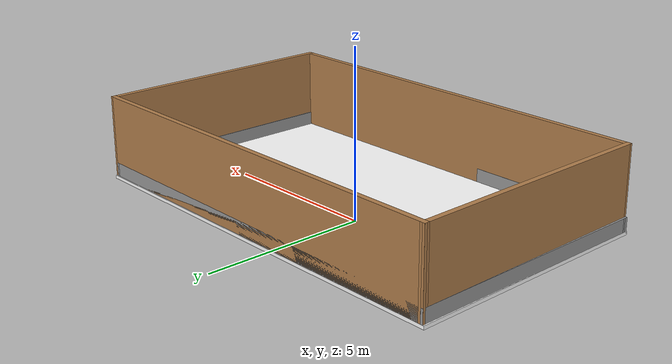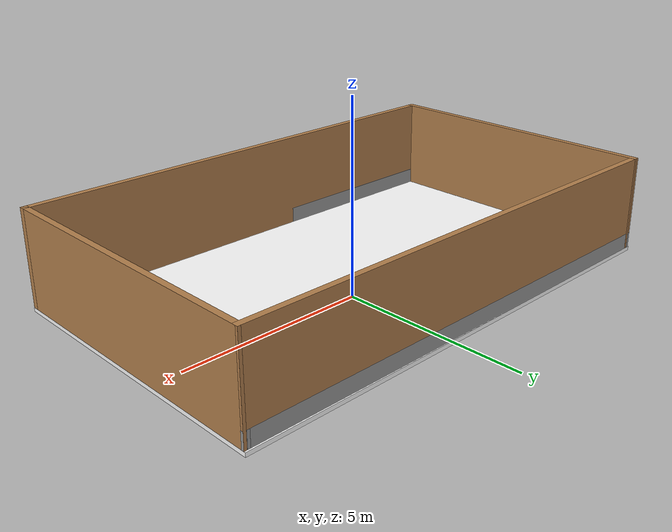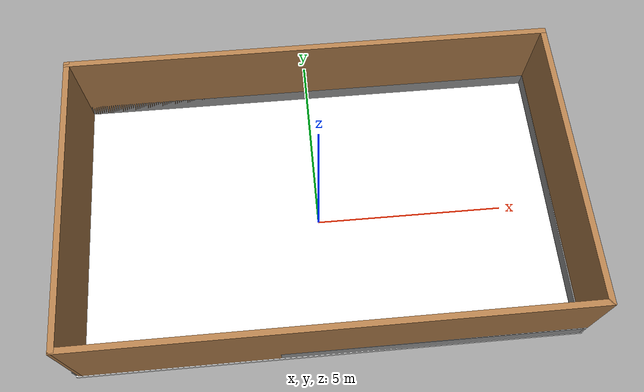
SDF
<?xml version='1.0'?>
<sdf version='1.6'>
  <model name='sala_seguidor'>
    <link name='Floor_0'>
      <pose frame=''>0 1e-06 0.5 0 -0 0</pose>
      <self_collide>0</self_collide>
      <enable_wind>0</enable_wind>
      <kinematic>0</kinematic>
       <collision name='Floor_0_Collision'>
        <laser_retro>0</laser_retro>
        <max_contacts>10</max_contacts>
        <pose frame=''>0 0 0.05 0 -0 0</pose>
        <geometry>
          <box>
            <size>12.5597 7.55672 0.1</size>
          </box>
        </geometry>
        <surface>
          <friction>
            <ode>
              <mu>0.8</mu>
              <mu2>0.8</mu2>
              <fdir1>0 0 0</fdir1>
              <slip1>0</slip1>
              <slip2>0</slip2>
            </ode>
            <torsional>
              <coefficient>1</coefficient>
              <patch_radius>0</patch_radius>
              <surface_radius>0</surface_radius>
              <use_patch_radius>1</use_patch_radius>
              <ode>
                <slip>0</slip>
              </ode>
            </torsional>
          </friction>
          <bounce>
            <restitution_coefficient>0</restitution_coefficient>
            <threshold>1e+06</threshold>
          </bounce>
          <contact>
            <collide_without_contact>0</collide_without_contact>
            <collide_without_contact_bitmask>1</collide_without_contact_bitmask>
            <collide_bitmask>1</collide_bitmask>
            <ode>
              <soft_cfm>0</soft_cfm>
              <soft_erp>0.2</soft_erp>
              <kp>1e+13</kp>
              <kd>1</kd>
              <max_vel>0.01</max_vel>
              <min_depth>0</min_depth>
            </ode>
            <bullet>
              <split_impulse>1</split_impulse>
              <split_impulse_penetration_threshold>-0.01</split_impulse_penetration_threshold>
              <soft_cfm>0</soft_cfm>
              <soft_erp>0.2</soft_erp>
              <kp>1e+13</kp>
              <kd>1</kd>
            </bullet>
          </contact>
        </surface>
      </collision>
      <visual name='Floor_0_Visual'>
        <pose frame=''>0 0 0.05 0 -0 0</pose>
        <geometry>
          <box>
            <size>12.5597 7.55672 0.1</size>
          </box>
        </geometry>
        <material>
          <ambient>1 1 1 1</ambient>
          <script>
            <uri>models://sala_seguidor/materials/scripts</uri>
            <uri>models://sala_seguidor/materials/texture</uri>
            <name>ReapetTexture</name>
          </script>
        </material>
        <meta>
          <layer>1</layer>
        </meta>
        <transparency>0</transparency>
        <cast_shadows>1</cast_shadows>
      </visual>

    </link>
    <link name='Wall_13'>
      <pose frame=''>0.018005 3.6855 0.5 0 0 -0.002829</pose>
      <self_collide>0</self_collide>
      <enable_wind>0</enable_wind>
      <kinematic>0</kinematic>
      <visual name='Wall_13_Visual'>
        <pose frame=''>0 0 0.25 0 -0 0</pose>
        <geometry>
          <box>
            <size>12.523 0.15 0.5</size>
          </box>
        </geometry>
        <material>
          <script>
            <uri>file://media/materials/scripts/gazebo.material</uri>
            <name>Gazebo/Grey</name>
          </script>
          <ambient>1 1 1 1</ambient>
        </material>
        <meta>
          <layer>1</layer>
        </meta>
        <transparency>0</transparency>
        <cast_shadows>1</cast_shadows>
      </visual>
      <collision name='Wall_13_Collision'>
        <laser_retro>0</laser_retro>
        <max_contacts>10</max_contacts>
        <pose frame=''>0 0 0.25 0 -0 0</pose>
        <geometry>
          <box>
            <size>12.523 0.15 0.5</size>
          </box>
        </geometry>
        <surface>
          <friction>
            <ode>
              <mu>1</mu>
              <mu2>1</mu2>
              <fdir1>0 0 0</fdir1>
              <slip1>0</slip1>
              <slip2>0</slip2>
            </ode>
            <torsional>
              <coefficient>1</coefficient>
              <patch_radius>0</patch_radius>
              <surface_radius>0</surface_radius>
              <use_patch_radius>1</use_patch_radius>
              <ode>
                <slip>0</slip>
              </ode>
            </torsional>
          </friction>
          <bounce>
            <restitution_coefficient>0</restitution_coefficient>
            <threshold>1e+06</threshold>
          </bounce>
          <contact>
            <collide_without_contact>0</collide_without_contact>
            <collide_without_contact_bitmask>1</collide_without_contact_bitmask>
            <collide_bitmask>1</collide_bitmask>
            <ode>
              <soft_cfm>0</soft_cfm>
              <soft_erp>0.2</soft_erp>
              <kp>1e+13</kp>
              <kd>1</kd>
              <max_vel>0.01</max_vel>
              <min_depth>0</min_depth>
            </ode>
            <bullet>
              <split_impulse>1</split_impulse>
              <split_impulse_penetration_threshold>-0.01</split_impulse_penetration_threshold>
              <soft_cfm>0</soft_cfm>
              <soft_erp>0.2</soft_erp>
              <kp>1e+13</kp>
              <kd>1</kd>
            </bullet>
          </contact>
        </surface>
      </collision>
    </link>
    <link name='Wall_14'>
      <pose frame=''>6.18701 -0.017504 0.5 0 0 -1.57554</pose>
      <self_collide>0</self_collide>
      <enable_wind>0</enable_wind>
      <kinematic>0</kinematic>
      <visual name='Wall_14_Visual'>
        <pose frame=''>0 0 0.25 0 -0 0</pose>
        <geometry>
          <box>
            <size>7.52108 0.15 0.5</size>
          </box>
        </geometry>
        <material>
          <script>
            <uri>file://media/materials/scripts/gazebo.material</uri>
            <name>Gazebo/Grey</name>
          </script>
          <ambient>1 1 1 1</ambient>
        </material>
        <meta>
          <layer>1</layer>
        </meta>
        <transparency>0</transparency>
        <cast_shadows>1</cast_shadows>
      </visual>
      <collision name='Wall_14_Collision'>
        <laser_retro>0</laser_retro>
        <max_contacts>10</max_contacts>
        <pose frame=''>0 0 0.25 0 -0 0</pose>
        <geometry>
          <box>
            <size>7.52108 0.15 0.5</size>
          </box>
        </geometry>
        <surface>
          <friction>
            <ode>
              <mu>1</mu>
              <mu2>1</mu2>
              <fdir1>0 0 0</fdir1>
              <slip1>0</slip1>
              <slip2>0</slip2>
            </ode>
            <torsional>
              <coefficient>1</coefficient>
              <patch_radius>0</patch_radius>
              <surface_radius>0</surface_radius>
              <use_patch_radius>1</use_patch_radius>
              <ode>
                <slip>0</slip>
              </ode>
            </torsional>
          </friction>
          <bounce>
            <restitution_coefficient>0</restitution_coefficient>
            <threshold>1e+06</threshold>
          </bounce>
          <contact>
            <collide_without_contact>0</collide_without_contact>
            <collide_without_contact_bitmask>1</collide_without_contact_bitmask>
            <collide_bitmask>1</collide_bitmask>
            <ode>
              <soft_cfm>0</soft_cfm>
              <soft_erp>0.2</soft_erp>
              <kp>1e+13</kp>
              <kd>1</kd>
              <max_vel>0.01</max_vel>
              <min_depth>0</min_depth>
            </ode>
            <bullet>
              <split_impulse>1</split_impulse>
              <split_impulse_penetration_threshold>-0.01</split_impulse_penetration_threshold>
              <soft_cfm>0</soft_cfm>
              <soft_erp>0.2</soft_erp>
              <kp>1e+13</kp>
              <kd>1</kd>
            </bullet>
          </contact>
        </surface>
      </collision>
    </link>
    <link name='Wall_15'>
      <pose frame=''>-0.017495 -3.6855 0.5 0 -0 3.13876</pose>
      <self_collide>0</self_collide>
      <enable_wind>0</enable_wind>
      <kinematic>0</kinematic>
      <visual name='Wall_15_Visual'>
        <pose frame=''>0 0 0.25 0 -0 0</pose>
        <geometry>
          <box>
            <size>12.524 0.15 0.5</size>
          </box>
        </geometry>
        <material>
          <script>
            <uri>file://media/materials/scripts/gazebo.material</uri>
            <name>Gazebo/Grey</name>
          </script>
          <ambient>1 1 1 1</ambient>
        </material>
        <meta>
          <layer>1</layer>
        </meta>
        <transparency>0</transparency>
        <cast_shadows>1</cast_shadows>
      </visual>
      <collision name='Wall_15_Collision'>
        <laser_retro>0</laser_retro>
        <max_contacts>10</max_contacts>
        <pose frame=''>0 0 0.25 0 -0 0</pose>
        <geometry>
          <box>
            <size>12.524 0.15 0.5</size>
          </box>
        </geometry>
        <surface>
          <friction>
            <ode>
              <mu>1</mu>
              <mu2>1</mu2>
              <fdir1>0 0 0</fdir1>
              <slip1>0</slip1>
              <slip2>0</slip2>
            </ode>
            <torsional>
              <coefficient>1</coefficient>
              <patch_radius>0</patch_radius>
              <surface_radius>0</surface_radius>
              <use_patch_radius>1</use_patch_radius>
              <ode>
                <slip>0</slip>
              </ode>
            </torsional>
          </friction>
          <bounce>
            <restitution_coefficient>0</restitution_coefficient>
            <threshold>1e+06</threshold>
          </bounce>
          <contact>
            <collide_without_contact>0</collide_without_contact>
            <collide_without_contact_bitmask>1</collide_without_contact_bitmask>
            <collide_bitmask>1</collide_bitmask>
            <ode>
              <soft_cfm>0</soft_cfm>
              <soft_erp>0.2</soft_erp>
              <kp>1e+13</kp>
              <kd>1</kd>
              <max_vel>0.01</max_vel>
              <min_depth>0</min_depth>
            </ode>
            <bullet>
              <split_impulse>1</split_impulse>
              <split_impulse_penetration_threshold>-0.01</split_impulse_penetration_threshold>
              <soft_cfm>0</soft_cfm>
              <soft_erp>0.2</soft_erp>
              <kp>1e+13</kp>
              <kd>1</kd>
            </bullet>
          </contact>
        </surface>
      </collision>
    </link>
    <link name='Wall_16'>
      <pose frame=''>-6.18649 0.017496 0.5 0 -0 1.56591</pose>
      <self_collide>0</self_collide>
      <enable_wind>0</enable_wind>
      <kinematic>0</kinematic>
      <visual name='Wall_16_Visual'>
        <pose frame=''>0 0 0.25 0 -0 0</pose>
        <geometry>
          <box>
            <size>7.52109 0.15 0.5</size>
          </box>
        </geometry>
        <material>
          <script>
            <uri>file://media/materials/scripts/gazebo.material</uri>
            <name>Gazebo/Grey</name>
          </script>
          <ambient>1 1 1 1</ambient>
        </material>
        <meta>
          <layer>1</layer>
        </meta>
        <transparency>0</transparency>
        <cast_shadows>1</cast_shadows>
      </visual>
      <collision name='Wall_16_Collision'>
        <laser_retro>0</laser_retro>
        <max_contacts>10</max_contacts>
        <pose frame=''>0 0 0.25 0 -0 0</pose>
        <geometry>
          <box>
            <size>7.52109 0.15 0.5</size>
          </box>
        </geometry>
        <surface>
          <friction>
            <ode>
              <mu>1</mu>
              <mu2>1</mu2>
              <fdir1>0 0 0</fdir1>
              <slip1>0</slip1>
              <slip2>0</slip2>
            </ode>
            <torsional>
              <coefficient>1</coefficient>
              <patch_radius>0</patch_radius>
              <surface_radius>0</surface_radius>
              <use_patch_radius>1</use_patch_radius>
              <ode>
                <slip>0</slip>
              </ode>
            </torsional>
          </friction>
          <bounce>
            <restitution_coefficient>0</restitution_coefficient>
            <threshold>1e+06</threshold>
          </bounce>
          <contact>
            <collide_without_contact>0</collide_without_contact>
            <collide_without_contact_bitmask>1</collide_without_contact_bitmask>
            <collide_bitmask>1</collide_bitmask>
            <ode>
              <soft_cfm>0</soft_cfm>
              <soft_erp>0.2</soft_erp>
              <kp>1e+13</kp>
              <kd>1</kd>
              <max_vel>0.01</max_vel>
              <min_depth>0</min_depth>
            </ode>
            <bullet>
              <split_impulse>1</split_impulse>
              <split_impulse_penetration_threshold>-0.01</split_impulse_penetration_threshold>
              <soft_cfm>0</soft_cfm>
              <soft_erp>0.2</soft_erp>
              <kp>1e+13</kp>
              <kd>1</kd>
            </bullet>
          </contact>
        </surface>
      </collision>
    </link>
    <link name='Wall_20'>
      <pose frame=''>0.018005 3.6855 0.5 0 0 -0.002829</pose>
      <self_collide>0</self_collide>
      <enable_wind>0</enable_wind>
      <kinematic>0</kinematic>
      <visual name='Wall_20_Visual'>
        <pose frame=''>0 0 1.25 0 -0 0</pose>
        <geometry>
          <box>
            <size>12.523 0.15 2.5</size>
          </box>
        </geometry>
        <material>
          <script>
            <uri>file://media/materials/scripts/gazebo.material</uri>
            <name>Gazebo/Wood</name>
          </script>
          <ambient>1 1 1 1</ambient>
        </material>
        <meta>
          <layer>1</layer>
        </meta>
        <transparency>0</transparency>
        <cast_shadows>1</cast_shadows>
      </visual>
      <collision name='Wall_20_Collision'>
        <laser_retro>0</laser_retro>
        <max_contacts>10</max_contacts>
        <pose frame=''>0 0 1.25 0 -0 0</pose>
        <geometry>
          <box>
            <size>12.523 0.15 2.5</size>
          </box>
        </geometry>
        <surface>
          <friction>
            <ode>
              <mu>1</mu>
              <mu2>1</mu2>
              <fdir1>0 0 0</fdir1>
              <slip1>0</slip1>
              <slip2>0</slip2>
            </ode>
            <torsional>
              <coefficient>1</coefficient>
              <patch_radius>0</patch_radius>
              <surface_radius>0</surface_radius>
              <use_patch_radius>1</use_patch_radius>
              <ode>
                <slip>0</slip>
              </ode>
            </torsional>
          </friction>
          <bounce>
            <restitution_coefficient>0</restitution_coefficient>
            <threshold>1e+06</threshold>
          </bounce>
          <contact>
            <collide_without_contact>0</collide_without_contact>
            <collide_without_contact_bitmask>1</collide_without_contact_bitmask>
            <collide_bitmask>1</collide_bitmask>
            <ode>
              <soft_cfm>0</soft_cfm>
              <soft_erp>0.2</soft_erp>
              <kp>1e+13</kp>
              <kd>1</kd>
              <max_vel>0.01</max_vel>
              <min_depth>0</min_depth>
            </ode>
            <bullet>
              <split_impulse>1</split_impulse>
              <split_impulse_penetration_threshold>-0.01</split_impulse_penetration_threshold>
              <soft_cfm>0</soft_cfm>
              <soft_erp>0.2</soft_erp>
              <kp>1e+13</kp>
              <kd>1</kd>
            </bullet>
          </contact>
        </surface>
      </collision>
    </link>
    <link name='Wall_21'>
      <pose frame=''>6.20451 -0.007004 0.5 0 0 -1.5708</pose>
      <self_collide>0</self_collide>
      <enable_wind>0</enable_wind>
      <kinematic>0</kinematic>
      <visual name='Wall_21_Visual'>
        <pose frame=''>0 0 1.25 0 -0 0</pose>
        <geometry>
          <box>
            <size>7.5 0.15 2.5</size>
          </box>
        </geometry>
        <material>
          <script>
            <uri>file://media/materials/scripts/gazebo.material</uri>
            <name>Gazebo/Wood</name>
          </script>
          <ambient>1 1 1 1</ambient>
        </material>
        <meta>
          <layer>1</layer>
        </meta>
        <transparency>0</transparency>
        <cast_shadows>1</cast_shadows>
      </visual>
      <collision name='Wall_21_Collision'>
        <laser_retro>0</laser_retro>
        <max_contacts>10</max_contacts>
        <pose frame=''>0 0 1.25 0 -0 0</pose>
        <geometry>
          <box>
            <size>7.5 0.15 2.5</size>
          </box>
        </geometry>
        <surface>
          <friction>
            <ode>
              <mu>1</mu>
              <mu2>1</mu2>
              <fdir1>0 0 0</fdir1>
              <slip1>0</slip1>
              <slip2>0</slip2>
            </ode>
            <torsional>
              <coefficient>1</coefficient>
              <patch_radius>0</patch_radius>
              <surface_radius>0</surface_radius>
              <use_patch_radius>1</use_patch_radius>
              <ode>
                <slip>0</slip>
              </ode>
            </torsional>
          </friction>
          <bounce>
            <restitution_coefficient>0</restitution_coefficient>
            <threshold>1e+06</threshold>
          </bounce>
          <contact>
            <collide_without_contact>0</collide_without_contact>
            <collide_without_contact_bitmask>1</collide_without_contact_bitmask>
            <collide_bitmask>1</collide_bitmask>
            <ode>
              <soft_cfm>0</soft_cfm>
              <soft_erp>0.2</soft_erp>
              <kp>1e+13</kp>
              <kd>1</kd>
              <max_vel>0.01</max_vel>
              <min_depth>0</min_depth>
            </ode>
            <bullet>
              <split_impulse>1</split_impulse>
              <split_impulse_penetration_threshold>-0.01</split_impulse_penetration_threshold>
              <soft_cfm>0</soft_cfm>
              <soft_erp>0.2</soft_erp>
              <kp>1e+13</kp>
              <kd>1</kd>
            </bullet>
          </contact>
        </surface>
      </collision>
    </link>
    <link name='Wall_22'>
      <pose frame=''>0.029505 -3.682 0.5 0 -0 3.14159</pose>
      <self_collide>0</self_collide>
      <enable_wind>0</enable_wind>
      <kinematic>0</kinematic>
      <visual name='Wall_22_Visual'>
        <pose frame=''>0 0 1.25 0 -0 0</pose>
        <geometry>
          <box>
            <size>12.5 0.15 2.5</size>
          </box>
        </geometry>
        <material>
          <script>
            <uri>file://media/materials/scripts/gazebo.material</uri>
            <name>Gazebo/Wood</name>
          </script>
          <ambient>1 1 1 1</ambient>
        </material>
        <meta>
          <layer>1</layer>
        </meta>
        <transparency>0</transparency>
        <cast_shadows>1</cast_shadows>
      </visual>
      <collision name='Wall_22_Collision'>
        <laser_retro>0</laser_retro>
        <max_contacts>10</max_contacts>
        <pose frame=''>0 0 1.25 0 -0 0</pose>
        <geometry>
          <box>
            <size>12.5 0.15 2.5</size>
          </box>
        </geometry>
        <surface>
          <friction>
            <ode>
              <mu>1</mu>
              <mu2>1</mu2>
              <fdir1>0 0 0</fdir1>
              <slip1>0</slip1>
              <slip2>0</slip2>
            </ode>
            <torsional>
              <coefficient>1</coefficient>
              <patch_radius>0</patch_radius>
              <surface_radius>0</surface_radius>
              <use_patch_radius>1</use_patch_radius>
              <ode>
                <slip>0</slip>
              </ode>
            </torsional>
          </friction>
          <bounce>
            <restitution_coefficient>0</restitution_coefficient>
            <threshold>1e+06</threshold>
          </bounce>
          <contact>
            <collide_without_contact>0</collide_without_contact>
            <collide_without_contact_bitmask>1</collide_without_contact_bitmask>
            <collide_bitmask>1</collide_bitmask>
            <ode>
              <soft_cfm>0</soft_cfm>
              <soft_erp>0.2</soft_erp>
              <kp>1e+13</kp>
              <kd>1</kd>
              <max_vel>0.01</max_vel>
              <min_depth>0</min_depth>
            </ode>
            <bullet>
              <split_impulse>1</split_impulse>
              <split_impulse_penetration_threshold>-0.01</split_impulse_penetration_threshold>
              <soft_cfm>0</soft_cfm>
              <soft_erp>0.2</soft_erp>
              <kp>1e+13</kp>
              <kd>1</kd>
            </bullet>
          </contact>
        </surface>
      </collision>
    </link>
    <link name='Wall_23'>
      <pose frame=''>-6.157 0.010496 0.5 0 -0 1.57391</pose>
      <self_collide>0</self_collide>
      <enable_wind>0</enable_wind>
      <kinematic>0</kinematic>
      <visual name='Wall_23_Visual'>
        <pose frame=''>0 0 1.25 0 -0 0</pose>
        <geometry>
          <box>
            <size>7.53504 0.15 2.5</size>
          </box>
        </geometry>
        <material>
          <script>
            <uri>file://media/materials/scripts/gazebo.material</uri>
            <name>Gazebo/Wood</name>
          </script>
          <ambient>1 1 1 1</ambient>
        </material>
        <meta>
          <layer>1</layer>
        </meta>
        <transparency>0</transparency>
        <cast_shadows>1</cast_shadows>
      </visual>
      <collision name='Wall_23_Collision'>
        <laser_retro>0</laser_retro>
        <max_contacts>10</max_contacts>
        <pose frame=''>0 0 1.25 0 -0 0</pose>
        <geometry>
          <box>
            <size>7.53504 0.15 2.5</size>
          </box>
        </geometry>
        <surface>
          <friction>
            <ode>
              <mu>1</mu>
              <mu2>1</mu2>
              <fdir1>0 0 0</fdir1>
              <slip1>0</slip1>
              <slip2>0</slip2>
            </ode>
            <torsional>
              <coefficient>1</coefficient>
              <patch_radius>0</patch_radius>
              <surface_radius>0</surface_radius>
              <use_patch_radius>1</use_patch_radius>
              <ode>
                <slip>0</slip>
              </ode>
            </torsional>
          </friction>
          <bounce>
            <restitution_coefficient>0</restitution_coefficient>
            <threshold>1e+06</threshold>
          </bounce>
          <contact>
            <collide_without_contact>0</collide_without_contact>
            <collide_without_contact_bitmask>1</collide_without_contact_bitmask>
            <collide_bitmask>1</collide_bitmask>
            <ode>
              <soft_cfm>0</soft_cfm>
              <soft_erp>0.2</soft_erp>
              <kp>1e+13</kp>
              <kd>1</kd>
              <max_vel>0.01</max_vel>
              <min_depth>0</min_depth>
            </ode>
            <bullet>
              <split_impulse>1</split_impulse>
              <split_impulse_penetration_threshold>-0.01</split_impulse_penetration_threshold>
              <soft_cfm>0</soft_cfm>
              <soft_erp>0.2</soft_erp>
              <kp>1e+13</kp>
              <kd>1</kd>
            </bullet>
          </contact>
        </surface>
      </collision>
    </link>
    <static>1</static>
    <allow_auto_disable>1</allow_auto_disable>
  </model>
</sdf>
